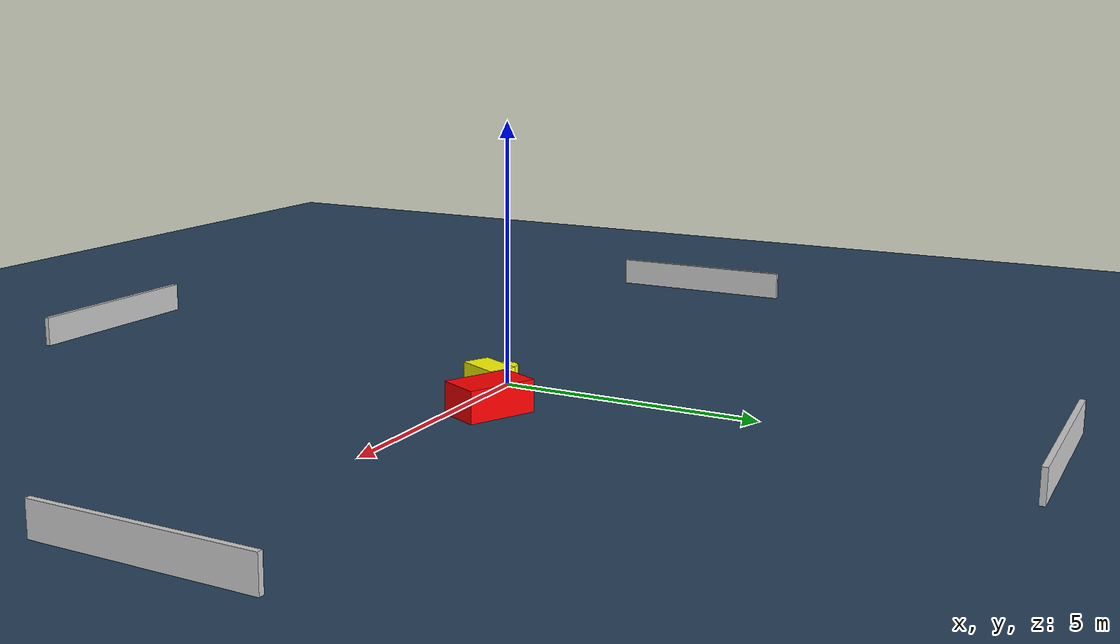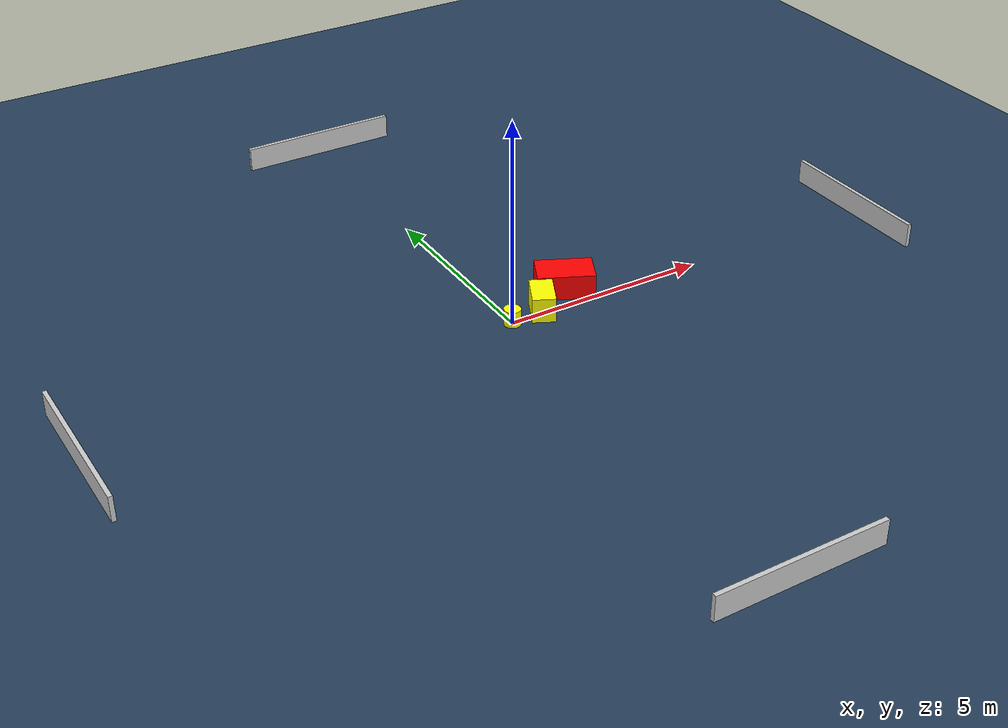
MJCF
<?xml version="1.0" ?>
<mujoco model="generated_environment">
  <option timestep="0.01" integrator="RK4" cone="elliptic"/>
  <default>
    <geom density="1"/>
  </default>
  <asset>
    <texture builtin="gradient" height="3072" name="skybox" rgb1="0.3 0.5 0.7" rgb2="0 0 0" type="skybox" width="512"/>
    <texture builtin="checker" height="300" name="groundplane" rgb1="0.2 0.3 0.4" rgb2="0.1 0.2 0.3" type="2d" width="300"/>
    <material name="groundplane" reflectance="0.2" texrepeat="5 5" texture="groundplane"/>
  </asset>
  <worldbody>
    <light dir="0 0 -1" directional="true" pos="0 0 1.5"/>
    <geom condim="3" friction="0.5 0.005 0.001" material="groundplane" name="floor" pos="0 0 0" size="0 0 0.05" type="plane"/>
    <body name="walls">
      <geom name="wall_1" condim="4" pos="-10.0 0.0 0.3" rgba="0.800000011920929 0.800000011920929 0.800000011920929 1.0" size="0.05 2.0 0.3" type="box"/>
      <geom name="wall_2" condim="4" pos="10.0 0.0 0.3" rgba="0.800000011920929 0.800000011920929 0.800000011920929 1.0" size="0.05 2.0 0.3" type="box"/>
      <geom name="wall_3" condim="4" pos="0.0 -10.0 0.3" rgba="0.800000011920929 0.800000011920929 0.800000011920929 1.0" size="2.0 0.05 0.3" type="box"/>
      <geom name="wall_4" condim="4" pos="0.0 10.0 0.3" rgba="0.800000011920929 0.800000011920929 0.800000011920929 1.0" size="2.0 0.05 0.3" type="box"/>
    </body>
    <body name="robot">
      <joint name="joint_x" type="slide" pos="0 0 0" axis="1 0 0"/>
      <joint name="joint_y" type="slide" pos="0 0 0" axis="0 1 0"/>
      <geom name="robot" type="cylinder" pos="0.0 0.0 0.2" size="0.2 0.2 0.0" mass="5.0" friction="1.0 0.005 0.0001" condim="4" rgba="1.0 1.0 0.0 1.0"/>
    </body>
    <body name="obstacle_1_movable">
      <geom name="obstacle_1_movable" condim="4" pos="0.8324292134760541 0.0693686053926337 0.3" euler="0 0 333.98188292769" friction="0.0 0.005 0.001" rgba="1.0 1.0 0.0 1.0" size="0.27288693394704044 0.4379910253271906 0.3" type="box" mass="0.1"/>
      <joint type="free"/>
    </body>
    <body name="obstacle_2_static">
      <geom name="obstacle_2_static" condim="4" pos="1.776458934773105 0.6067395653923698 0.3" euler="0 0 154.30669622630154" friction="0.0 0.005 0.001" rgba="1.0 0.0 0.0 1.0" size="0.6781037601926725 0.4139242429523795 0.3" type="box"/>
    </body>
  </worldbody>
  <actuator>
    <motor name="actuator_x" joint="joint_x" gear="1" ctrlrange="-1 1"/>
    <motor name="actuator_y" joint="joint_y" gear="1" ctrlrange="-1 1"/>
  </actuator>
</mujoco>
